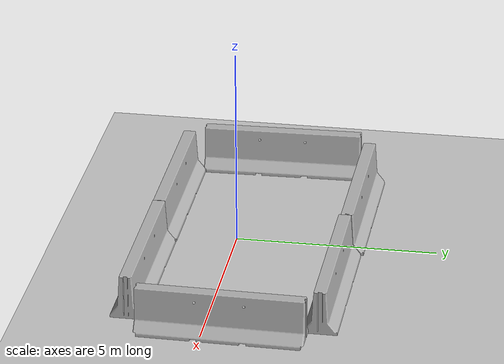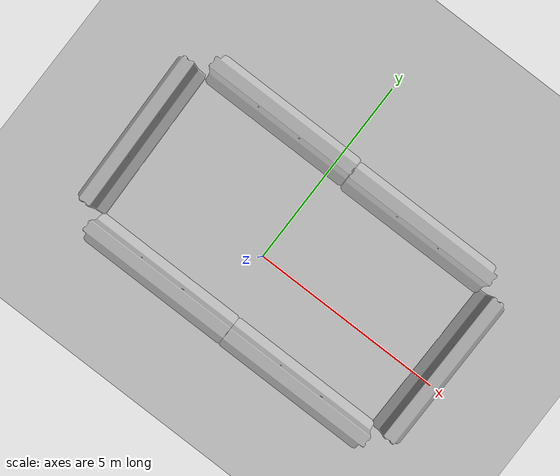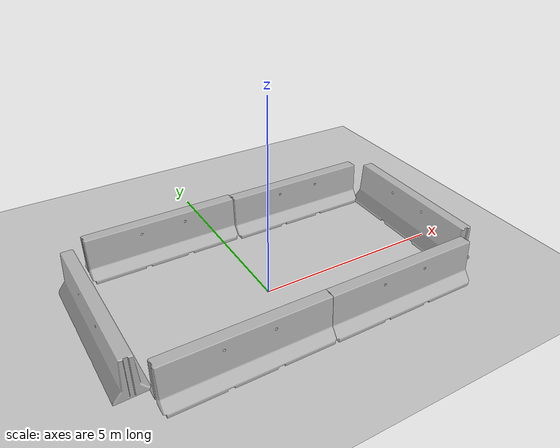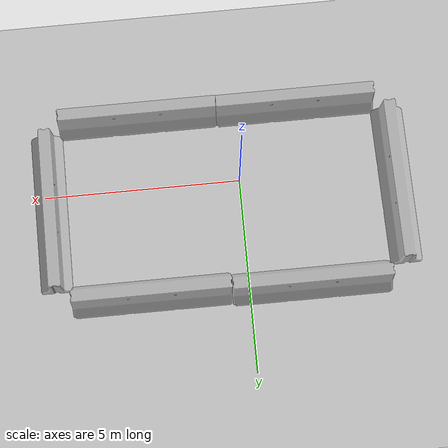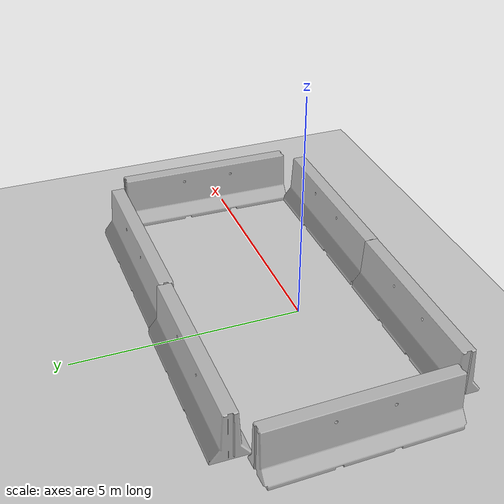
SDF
<sdf version="1.6">
 <world name="default">
  <light name="sun" type="directional">
   <pose>0 0 10 0 -0 0</pose>
   <diffuse>0.8 0.8 0.8 1</diffuse>
   <specular>0.1 0.1 0.1 1</specular>
   <attenuation>
    <range>1000</range>
    <constant>0.9</constant>
    <linear>0.01</linear>
    <quadratic>0.001</quadratic>
   </attenuation>
   <direction>-0.5 0.5 -1</direction>
  </light>
  <model name="ground_plane">
   <static>1</static>
   <link name="link">
    <collision name="collision">
     <geometry><plane><normal>0 0 1</normal><size>100 100</size></plane></geometry>
     <surface><friction><ode><mu>100</mu><mu2>50</mu2></ode></friction></surface>
    </collision>
    <visual name="visual">
     <cast_shadows>0</cast_shadows>
     <geometry><plane><normal>0 0 1</normal><size>100 100</size></plane></geometry>
     <material>
      <script><uri>file://media/materials/scripts/gazebo.material</uri><name>Gazebo/Grey</name></script>
     </material>
    </visual>
   </link>
  </model>
  <gravity>0 0 -9.8</gravity>
  <magnetic_field>6e-06 2.3e-05 -4.2e-05</magnetic_field>
  <atmosphere type="adiabatic"/>
  <physics name="default_physics" default="0" type="ode">
   <max_step_size>0.001</max_step_size>
   <real_time_factor>1</real_time_factor>
   <real_time_update_rate>1000</real_time_update_rate>
  </physics>
  <scene><ambient>0.4 0.4 0.4 1</ambient><background>0.7 0.7 0.7 1</background><shadows>1</shadows></scene>
  <spherical_coordinates>
   <surface_model>EARTH_WGS84</surface_model>
   <latitude_deg>0</latitude_deg>
   <longitude_deg>0</longitude_deg>
   <elevation>0</elevation>
   <heading_deg>0</heading_deg>
  </spherical_coordinates>
  <model name="jersey_barrier">
   <static>1</static>
   <link name="link">
    <visual name="visual">
     <geometry>
      <mesh><uri>model://jersey_barrier/meshes/jersey_barrier.dae</uri><scale>1 1 1</scale></mesh>
     </geometry>
    </visual>
    <collision name="upright">
     <pose>0 0 0.5715 0 -0 0</pose>
     <geometry><box><size>4.06542 0.3063 1.143</size></box></geometry>
    </collision>
    <collision name="base">
     <pose>0 0 0.032258 0 -0 0</pose>
     <geometry><box><size>4.06542 0.8107 0.064516</size></box></geometry>
    </collision>
    <collision name="base2">
     <pose>0 0 0.1 0 -0 0</pose>
     <geometry><box><size>4.06542 0.65 0.1</size></box></geometry>
    </collision>
    <collision name="base3">
     <pose>0 0 0.2 0 -0 0</pose>
     <geometry><box><size>4.06542 0.5 0.1</size></box></geometry>
    </collision>
    <collision name="left-angle">
     <pose>0 -0.224 0.2401 0.9 -0 0</pose>
     <geometry><box><size>4.06542 0.5 0.064516</size></box></geometry>
    </collision>
    <collision name="right-angle">
     <pose>0 0.224 0.2401 -0.9 0 0</pose>
     <geometry><box><size>4.06542 0.5 0.064516</size></box></geometry>
    </collision>
   </link>
   <pose>-1.57679 2.825 0 0 -0 0</pose>
  </model>
  <model name="jersey_barrier_0">
   <static>1</static>
   <link name="link">
    <visual name="visual">
     <geometry>
      <mesh><uri>model://jersey_barrier/meshes/jersey_barrier.dae</uri><scale>1 1 1</scale></mesh>
     </geometry>
    </visual>
    <collision name="upright">
     <pose>0 0 0.5715 0 -0 0</pose>
     <geometry><box><size>4.06542 0.3063 1.143</size></box></geometry>
    </collision>
    <collision name="base">
     <pose>0 0 0.032258 0 -0 0</pose>
     <geometry><box><size>4.06542 0.8107 0.064516</size></box></geometry>
    </collision>
    <collision name="base2">
     <pose>0 0 0.1 0 -0 0</pose>
     <geometry><box><size>4.06542 0.65 0.1</size></box></geometry>
    </collision>
    <collision name="base3">
     <pose>0 0 0.2 0 -0 0</pose>
     <geometry><box><size>4.06542 0.5 0.1</size></box></geometry>
    </collision>
    <collision name="left-angle">
     <pose>0 -0.224 0.2401 0.9 -0 0</pose>
     <geometry><box><size>4.06542 0.5 0.064516</size></box></geometry>
    </collision>
    <collision name="right-angle">
     <pose>0 0.224 0.2401 -0.9 0 0</pose>
     <geometry><box><size>4.06542 0.5 0.064516</size></box></geometry>
    </collision>
   </link>
   <pose>-3.99771 0.513476 0 0 0 -1.54543</pose>
  </model>
  <model name="jersey_barrier_1">
   <static>1</static>
   <link name="link">
    <visual name="visual">
     <geometry>
      <mesh><uri>model://jersey_barrier/meshes/jersey_barrier.dae</uri><scale>1 1 1</scale></mesh>
     </geometry>
    </visual>
    <collision name="upright">
     <pose>0 0 0.5715 0 -0 0</pose>
     <geometry><box><size>4.06542 0.3063 1.143</size></box></geometry>
    </collision>
    <collision name="base">
     <pose>0 0 0.032258 0 -0 0</pose>
     <geometry><box><size>4.06542 0.8107 0.064516</size></box></geometry>
    </collision>
    <collision name="base2">
     <pose>0 0 0.1 0 -0 0</pose>
     <geometry><box><size>4.06542 0.65 0.1</size></box></geometry>
    </collision>
    <collision name="base3">
     <pose>0 0 0.2 0 -0 0</pose>
     <geometry><box><size>4.06542 0.5 0.1</size></box></geometry>
    </collision>
    <collision name="left-angle">
     <pose>0 -0.224 0.2401 0.9 -0 0</pose>
     <geometry><box><size>4.06542 0.5 0.064516</size></box></geometry>
    </collision>
    <collision name="right-angle">
     <pose>0 0.224 0.2401 -0.9 0 0</pose>
     <geometry><box><size>4.06542 0.5 0.064516</size></box></geometry>
    </collision>
   </link>
   <pose>-1.57302 -1.8691 0 0 -0 0</pose>
  </model>
  <model name="jersey_barrier_2">
   <static>1</static>
   <link name="link">
    <visual name="visual">
     <geometry>
      <mesh><uri>model://jersey_barrier/meshes/jersey_barrier.dae</uri><scale>1 1 1</scale></mesh>
     </geometry>
    </visual>
    <collision name="upright">
     <pose>0 0 0.5715 0 -0 0</pose>
     <geometry><box><size>4.06542 0.3063 1.143</size></box></geometry>
    </collision>
    <collision name="base">
     <pose>0 0 0.032258 0 -0 0</pose>
     <geometry><box><size>4.06542 0.8107 0.064516</size></box></geometry>
    </collision>
    <collision name="base2">
     <pose>0 0 0.1 0 -0 0</pose>
     <geometry><box><size>4.06542 0.65 0.1</size></box></geometry>
    </collision>
    <collision name="base3">
     <pose>0 0 0.2 0 -0 0</pose>
     <geometry><box><size>4.06542 0.5 0.1</size></box></geometry>
    </collision>
    <collision name="left-angle">
     <pose>0 -0.224 0.2401 0.9 -0 0</pose>
     <geometry><box><size>4.06542 0.5 0.064516</size></box></geometry>
    </collision>
    <collision name="right-angle">
     <pose>0 0.224 0.2401 -0.9 0 0</pose>
     <geometry><box><size>4.06542 0.5 0.064516</size></box></geometry>
    </collision>
   </link>
   <pose>2.47948 2.77353 0 0 -0 0</pose>
  </model>
  <model name="jersey_barrier_3">
   <static>1</static>
   <link name="link">
    <visual name="visual">
     <geometry>
      <mesh><uri>model://jersey_barrier/meshes/jersey_barrier.dae</uri><scale>1 1 1</scale></mesh>
     </geometry>
    </visual>
    <collision name="upright">
     <pose>0 0 0.5715 0 -0 0</pose>
     <geometry><box><size>4.06542 0.3063 1.143</size></box></geometry>
    </collision>
    <collision name="base">
     <pose>0 0 0.032258 0 -0 0</pose>
     <geometry><box><size>4.06542 0.8107 0.064516</size></box></geometry>
    </collision>
    <collision name="base2">
     <pose>0 0 0.1 0 -0 0</pose>
     <geometry><box><size>4.06542 0.65 0.1</size></box></geometry>
    </collision>
    <collision name="base3">
     <pose>0 0 0.2 0 -0 0</pose>
     <geometry><box><size>4.06542 0.5 0.1</size></box></geometry>
    </collision>
    <collision name="left-angle">
     <pose>0 -0.224 0.2401 0.9 -0 0</pose>
     <geometry><box><size>4.06542 0.5 0.064516</size></box></geometry>
    </collision>
    <collision name="right-angle">
     <pose>0 0.224 0.2401 -0.9 0 0</pose>
     <geometry><box><size>4.06542 0.5 0.064516</size></box></geometry>
    </collision>
   </link>
   <pose>2.44756 -1.87761 0 0 -0 0</pose>
  </model>
  <model name="jersey_barrier_4">
   <static>1</static>
   <link name="link">
    <visual name="visual">
     <geometry>
      <mesh><uri>model://jersey_barrier/meshes/jersey_barrier.dae</uri><scale>1 1 1</scale></mesh>
     </geometry>
    </visual>
    <collision name="upright">
     <pose>0 0 0.5715 0 -0 0</pose>
     <geometry><box><size>4.06542 0.3063 1.143</size></box></geometry>
    </collision>
    <collision name="base">
     <pose>0 0 0.032258 0 -0 0</pose>
     <geometry><box><size>4.06542 0.8107 0.064516</size></box></geometry>
    </collision>
    <collision name="base2">
     <pose>0 0 0.1 0 -0 0</pose>
     <geometry><box><size>4.06542 0.65 0.1</size></box></geometry>
    </collision>
    <collision name="base3">
     <pose>0 0 0.2 0 -0 0</pose>
     <geometry><box><size>4.06542 0.5 0.1</size></box></geometry>
    </collision>
    <collision name="left-angle">
     <pose>0 -0.224 0.2401 0.9 -0 0</pose>
     <geometry><box><size>4.06542 0.5 0.064516</size></box></geometry>
    </collision>
    <collision name="right-angle">
     <pose>0 0.224 0.2401 -0.9 0 0</pose>
     <geometry><box><size>4.06542 0.5 0.064516</size></box></geometry>
    </collision>
   </link>
   <pose>4.85537 0.46845 0 0 0 -1.58295</pose>
  </model>
 </world>
</sdf>
